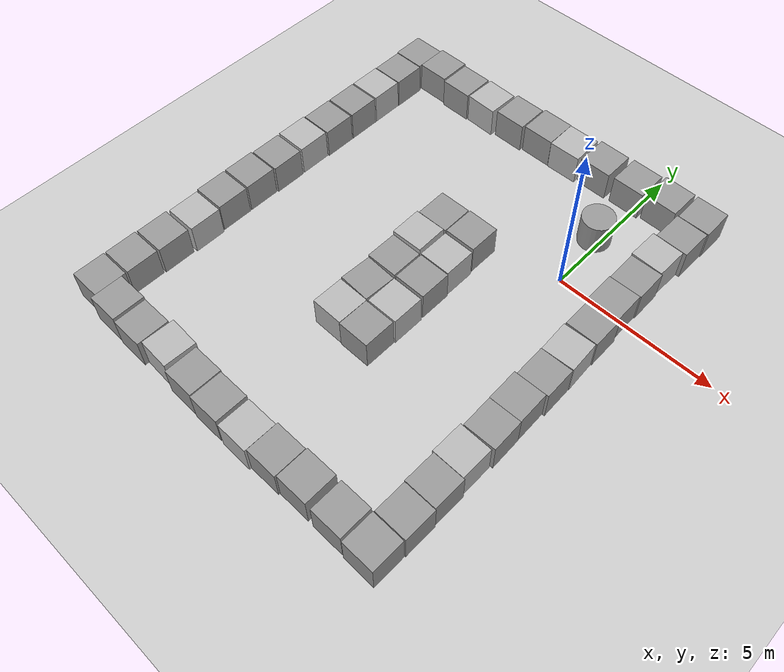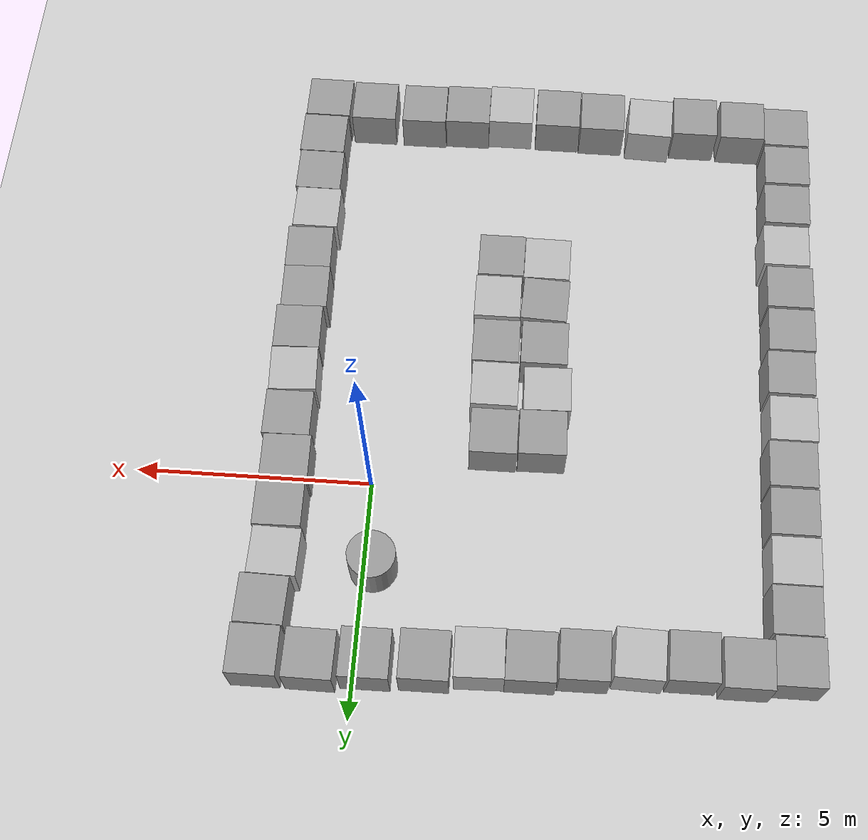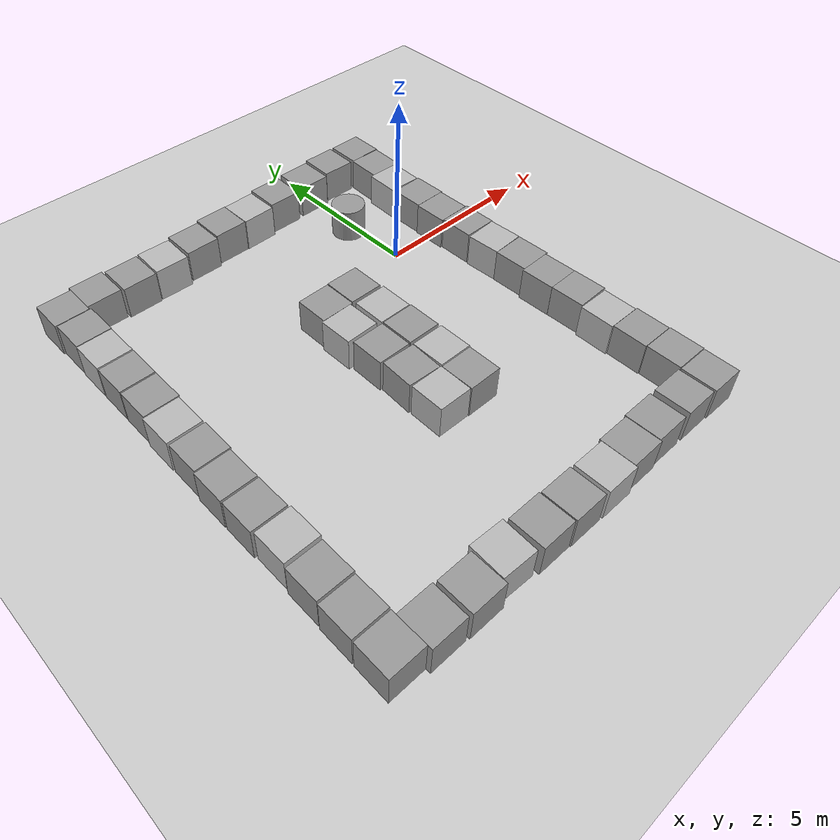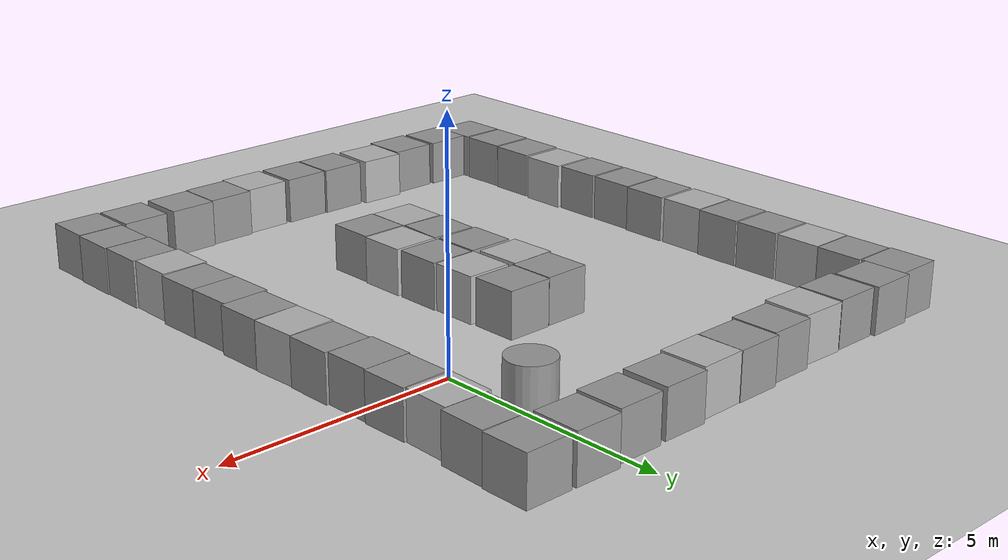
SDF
<sdf version="1.6">
 <world name="default">
  <light name="sun" type="directional">
   <pose>0 0 10 0 -0 0</pose>
   <diffuse>0.8 0.8 0.8 1</diffuse>
   <specular>0.2 0.2 0.2 1</specular>
   <attenuation>
    <range>1000</range>
    <constant>0.9</constant>
    <linear>0.01</linear>
    <quadratic>0.001</quadratic>
   </attenuation>
   <direction>-0.5 0.1 -0.9</direction>
  </light>
  <model name="ground_plane">
   <static>1</static>
   <link name="link">
    <collision name="collision">
     <geometry><plane><normal>0 0 1</normal><size>100 100</size></plane></geometry>
     <surface>
      <contact><collide_bitmask>65535</collide_bitmask></contact>
      <friction><ode><mu>100</mu><mu2>50</mu2></ode></friction>
     </surface>
    </collision>
    <visual name="visual">
     <cast_shadows>0</cast_shadows>
     <geometry><plane><normal>0 0 1</normal><size>100 100</size></plane></geometry>
     <material>
      <script><uri>file://media/materials/scripts/gazebo.material</uri><name>Gazebo/Grey</name></script>
     </material>
    </visual>
   </link>
  </model>
  <gravity>0 0 -9.8</gravity>
  <magnetic_field>6e-06 2.3e-05 -4.2e-05</magnetic_field>
  <atmosphere type="adiabatic"/>
  <physics name="default_physics" default="0" type="ode">
   <max_step_size>0.001</max_step_size>
   <real_time_factor>1</real_time_factor>
   <real_time_update_rate>1000</real_time_update_rate>
  </physics>
  <scene><ambient>0.4 0.4 0.4 1</ambient><background>0.7 0.7 0.7 1</background><shadows>1</shadows></scene>
  <audio><device>default</device></audio>
  <spherical_coordinates>
   <surface_model>EARTH_WGS84</surface_model>
   <latitude_deg>0</latitude_deg>
   <longitude_deg>0</longitude_deg>
   <elevation>0</elevation>
   <heading_deg>0</heading_deg>
  </spherical_coordinates>
  <model name="unit_box">
   <pose>-8.73208 0.394658 0.499995 1e-05 -0 -0.00012</pose>
   <link name="link">
    <inertial>
     <mass>1</mass>
     <inertia>
      <ixx>0.166667</ixx>
      <ixy>0</ixy>
      <ixz>0</ixz>
      <iyy>0.166667</iyy>
      <iyz>0</iyz>
      <izz>0.166667</izz>
     </inertia>
    </inertial>
    <collision name="collision"><geometry><box><size>1 1 1</size></box></geometry></collision>
    <visual name="visual">
     <geometry><box><size>1 1 1</size></box></geometry>
     <material>
      <script><name>Gazebo/Grey</name><uri>file://media/materials/scripts/gazebo.material</uri></script>
     </material>
    </visual>
   </link>
  </model>
  <model name="unit_box_1">
   <pose>-8.73525 -0.650646 0.499995 1e-05 -0 0</pose>
   <link name="link">
    <inertial>
     <mass>1</mass>
     <inertia>
      <ixx>0.166667</ixx>
      <ixy>0</ixy>
      <ixz>0</ixz>
      <iyy>0.166667</iyy>
      <iyz>0</iyz>
      <izz>0.166667</izz>
     </inertia>
    </inertial>
    <collision name="collision"><geometry><box><size>1 1 1</size></box></geometry></collision>
    <visual name="visual">
     <geometry><box><size>1 1 1</size></box></geometry>
     <material>
      <script><name>Gazebo/Grey</name><uri>file://media/materials/scripts/gazebo.material</uri></script>
     </material>
    </visual>
   </link>
  </model>
  <model name="unit_box_4">
   <pose>-2.45366 -3.10243 0.499995 0 1e-05 0</pose>
   <link name="link">
    <inertial>
     <mass>1</mass>
     <inertia>
      <ixx>0.166667</ixx>
      <ixy>0</ixy>
      <ixz>0</ixz>
      <iyy>0.166667</iyy>
      <iyz>0</iyz>
      <izz>0.166667</izz>
     </inertia>
    </inertial>
    <collision name="collision"><geometry><box><size>1 1 1</size></box></geometry></collision>
    <visual name="visual">
     <geometry><box><size>1 1 1</size></box></geometry>
     <material>
      <script><name>Gazebo/Grey</name><uri>file://media/materials/scripts/gazebo.material</uri></script>
     </material>
    </visual>
   </link>
  </model>
  <model name="unit_box_6">
   <pose>-3.46532 -4.16994 0.499995 0 1e-05 -0.049109</pose>
   <link name="link">
    <inertial>
     <mass>1</mass>
     <inertia>
      <ixx>0.166667</ixx>
      <ixy>0</ixy>
      <ixz>0</ixz>
      <iyy>0.166667</iyy>
      <iyz>0</iyz>
      <izz>0.166667</izz>
     </inertia>
    </inertial>
    <collision name="collision"><geometry><box><size>1 1 1</size></box></geometry></collision>
    <visual name="visual">
     <geometry><box><size>1 1 1</size></box></geometry>
     <material>
      <script><name>Gazebo/Grey</name><uri>file://media/materials/scripts/gazebo.material</uri></script>
     </material>
    </visual>
   </link>
  </model>
  <model name="unit_box_8">
   <pose>-2.46161 -5.22319 0.5 0 -0 0</pose>
   <link name="link">
    <inertial>
     <mass>1</mass>
     <inertia>
      <ixx>0.166667</ixx>
      <ixy>0</ixy>
      <ixz>0</ixz>
      <iyy>0.166667</iyy>
      <iyz>0</iyz>
      <izz>0.166667</izz>
     </inertia>
    </inertial>
    <collision name="collision"><geometry><box><size>1 1 1</size></box></geometry></collision>
    <visual name="visual">
     <geometry><box><size>1 1 1</size></box></geometry>
     <material>
      <script><name>Gazebo/Grey</name><uri>file://media/materials/scripts/gazebo.material</uri></script>
     </material>
    </visual>
   </link>
  </model>
  <model name="unit_box_10">
   <pose>-3.49852 -3.11328 0.499995 1e-05 -0 0</pose>
   <link name="link">
    <inertial>
     <mass>1</mass>
     <inertia>
      <ixx>0.166667</ixx>
      <ixy>0</ixy>
      <ixz>0</ixz>
      <iyy>0.166667</iyy>
      <iyz>0</iyz>
      <izz>0.166667</izz>
     </inertia>
    </inertial>
    <collision name="collision"><geometry><box><size>1 1 1</size></box></geometry></collision>
    <visual name="visual">
     <geometry><box><size>1 1 1</size></box></geometry>
     <material>
      <script><name>Gazebo/Grey</name><uri>file://media/materials/scripts/gazebo.material</uri></script>
     </material>
    </visual>
   </link>
  </model>
  <model name="unit_box_13">
   <pose>-8.75933 -2.74938 0.499995 1e-05 -0 0</pose>
   <link name="link">
    <inertial>
     <mass>1</mass>
     <inertia>
      <ixx>0.166667</ixx>
      <ixy>0</ixy>
      <ixz>0</ixz>
      <iyy>0.166667</iyy>
      <iyz>0</iyz>
      <izz>0.166667</izz>
     </inertia>
    </inertial>
    <collision name="collision"><geometry><box><size>1 1 1</size></box></geometry></collision>
    <visual name="visual">
     <geometry><box><size>1 1 1</size></box></geometry>
     <material>
      <script><name>Gazebo/Grey</name><uri>file://media/materials/scripts/gazebo.material</uri></script>
     </material>
    </visual>
   </link>
  </model>
  <model name="unit_box_14">
   <pose>-8.79846 -3.78614 0.499995 0 1e-05 0</pose>
   <link name="link">
    <inertial>
     <mass>1</mass>
     <inertia>
      <ixx>0.166667</ixx>
      <ixy>0</ixy>
      <ixz>0</ixz>
      <iyy>0.166667</iyy>
      <iyz>0</iyz>
      <izz>0.166667</izz>
     </inertia>
    </inertial>
    <collision name="collision"><geometry><box><size>1 1 1</size></box></geometry></collision>
    <visual name="visual">
     <geometry><box><size>1 1 1</size></box></geometry>
     <material>
      <script><name>Gazebo/Grey</name><uri>file://media/materials/scripts/gazebo.material</uri></script>
     </material>
    </visual>
   </link>
  </model>
  <model name="unit_box_15">
   <pose>-8.79378 -4.83925 0.499995 1e-05 -0 0</pose>
   <link name="link">
    <inertial>
     <mass>1</mass>
     <inertia>
      <ixx>0.166667</ixx>
      <ixy>0</ixy>
      <ixz>0</ixz>
      <iyy>0.166667</iyy>
      <iyz>0</iyz>
      <izz>0.166667</izz>
     </inertia>
    </inertial>
    <collision name="collision"><geometry><box><size>1 1 1</size></box></geometry></collision>
    <visual name="visual">
     <geometry><box><size>1 1 1</size></box></geometry>
     <material>
      <script><name>Gazebo/Grey</name><uri>file://media/materials/scripts/gazebo.material</uri></script>
     </material>
    </visual>
   </link>
  </model>
  <model name="unit_box_17">
   <pose>-8.79105 -6.9817 0.499995 1e-05 -0 0</pose>
   <link name="link">
    <inertial>
     <mass>1</mass>
     <inertia>
      <ixx>0.166667</ixx>
      <ixy>0</ixy>
      <ixz>0</ixz>
      <iyy>0.166667</iyy>
      <iyz>0</iyz>
      <izz>0.166667</izz>
     </inertia>
    </inertial>
    <collision name="collision"><geometry><box><size>1 1 1</size></box></geometry></collision>
    <visual name="visual">
     <geometry><box><size>1 1 1</size></box></geometry>
     <material>
      <script><name>Gazebo/Grey</name><uri>file://media/materials/scripts/gazebo.material</uri></script>
     </material>
    </visual>
   </link>
  </model>
  <model name="unit_box_18">
   <pose>-8.81822 -8.03717 0.499995 0 1e-05 0</pose>
   <link name="link">
    <inertial>
     <mass>1</mass>
     <inertia>
      <ixx>0.166667</ixx>
      <ixy>0</ixy>
      <ixz>0</ixz>
      <iyy>0.166667</iyy>
      <iyz>0</iyz>
      <izz>0.166667</izz>
     </inertia>
    </inertial>
    <collision name="collision"><geometry><box><size>1 1 1</size></box></geometry></collision>
    <visual name="visual">
     <geometry><box><size>1 1 1</size></box></geometry>
     <material>
      <script><name>Gazebo/Grey</name><uri>file://media/materials/scripts/gazebo.material</uri></script>
     </material>
    </visual>
   </link>
  </model>
  <model name="unit_box_19">
   <pose>-8.82789 -9.08499 0.499995 1e-05 -0 -0.003825</pose>
   <link name="link">
    <inertial>
     <mass>1</mass>
     <inertia>
      <ixx>0.166667</ixx>
      <ixy>0</ixy>
      <ixz>0</ixz>
      <iyy>0.166667</iyy>
      <iyz>0</iyz>
      <izz>0.166667</izz>
     </inertia>
    </inertial>
    <collision name="collision"><geometry><box><size>1 1 1</size></box></geometry></collision>
    <visual name="visual">
     <geometry><box><size>1 1 1</size></box></geometry>
     <material>
      <script><name>Gazebo/Grey</name><uri>file://media/materials/scripts/gazebo.material</uri></script>
     </material>
    </visual>
   </link>
  </model>
  <model name="unit_box_20">
   <pose>-7.82836 -9.21753 0.499995 1e-05 -0 -0.003821</pose>
   <link name="link">
    <inertial>
     <mass>1</mass>
     <inertia>
      <ixx>0.166667</ixx>
      <ixy>0</ixy>
      <ixz>0</ixz>
      <iyy>0.166667</iyy>
      <iyz>0</iyz>
      <izz>0.166667</izz>
     </inertia>
    </inertial>
    <collision name="collision"><geometry><box><size>1 1 1</size></box></geometry></collision>
    <visual name="visual">
     <geometry><box><size>1 1 1</size></box></geometry>
     <material>
      <script><name>Gazebo/Grey</name><uri>file://media/materials/scripts/gazebo.material</uri></script>
     </material>
    </visual>
   </link>
  </model>
  <model name="unit_box_21">
   <pose>-6.73771 -9.24958 0.499995 -0 1e-05 -0.002543</pose>
   <link name="link">
    <inertial>
     <mass>1</mass>
     <inertia>
      <ixx>0.166667</ixx>
      <ixy>0</ixy>
      <ixz>0</ixz>
      <iyy>0.166667</iyy>
      <iyz>0</iyz>
      <izz>0.166667</izz>
     </inertia>
    </inertial>
    <collision name="collision"><geometry><box><size>1 1 1</size></box></geometry></collision>
    <visual name="visual">
     <geometry><box><size>1 1 1</size></box></geometry>
     <material>
      <script><name>Gazebo/Grey</name><uri>file://media/materials/scripts/gazebo.material</uri></script>
     </material>
    </visual>
   </link>
  </model>
  <model name="unit_box_23">
   <pose>-4.59276 -9.25097 0.499995 -1e-05 -0 -0.00204</pose>
   <link name="link">
    <inertial>
     <mass>1</mass>
     <inertia>
      <ixx>0.166667</ixx>
      <ixy>0</ixy>
      <ixz>0</ixz>
      <iyy>0.166667</iyy>
      <iyz>0</iyz>
      <izz>0.166667</izz>
     </inertia>
    </inertial>
    <collision name="collision"><geometry><box><size>1 1 1</size></box></geometry></collision>
    <visual name="visual">
     <geometry><box><size>1 1 1</size></box></geometry>
     <material>
      <script><name>Gazebo/Grey</name><uri>file://media/materials/scripts/gazebo.material</uri></script>
     </material>
    </visual>
   </link>
  </model>
  <model name="unit_box_24">
   <pose>-3.56354 -9.2781 0.499995 -0 1e-05 -0.002492</pose>
   <link name="link">
    <inertial>
     <mass>1</mass>
     <inertia>
      <ixx>0.166667</ixx>
      <ixy>0</ixy>
      <ixz>0</ixz>
      <iyy>0.166667</iyy>
      <iyz>0</iyz>
      <izz>0.166667</izz>
     </inertia>
    </inertial>
    <collision name="collision"><geometry><box><size>1 1 1</size></box></geometry></collision>
    <visual name="visual">
     <geometry><box><size>1 1 1</size></box></geometry>
     <material>
      <script><name>Gazebo/Grey</name><uri>file://media/materials/scripts/gazebo.material</uri></script>
     </material>
    </visual>
   </link>
  </model>
  <model name="unit_box_26">
   <pose>-1.46416 -9.24413 0.499995 1e-05 -0 -0.000116</pose>
   <link name="link">
    <inertial>
     <mass>1</mass>
     <inertia>
      <ixx>0.166667</ixx>
      <ixy>0</ixy>
      <ixz>0</ixz>
      <iyy>0.166667</iyy>
      <iyz>0</iyz>
      <izz>0.166667</izz>
     </inertia>
    </inertial>
    <collision name="collision"><geometry><box><size>1 1 1</size></box></geometry></collision>
    <visual name="visual">
     <geometry><box><size>1 1 1</size></box></geometry>
     <material>
      <script><name>Gazebo/Grey</name><uri>file://media/materials/scripts/gazebo.material</uri></script>
     </material>
    </visual>
   </link>
  </model>
  <model name="unit_box_27">
   <pose>-0.450502 -9.20253 0.499995 1e-05 -0 -0.000115</pose>
   <link name="link">
    <inertial>
     <mass>1</mass>
     <inertia>
      <ixx>0.166667</ixx>
      <ixy>0</ixy>
      <ixz>0</ixz>
      <iyy>0.166667</iyy>
      <iyz>0</iyz>
      <izz>0.166667</izz>
     </inertia>
    </inertial>
    <collision name="collision"><geometry><box><size>1 1 1</size></box></geometry></collision>
    <visual name="visual">
     <geometry><box><size>1 1 1</size></box></geometry>
     <material>
      <script><name>Gazebo/Grey</name><uri>file://media/materials/scripts/gazebo.material</uri></script>
     </material>
    </visual>
   </link>
  </model>
  <model name="unit_box_28">
   <pose>0.72319 -9.21205 0.499995 1e-05 -0 0</pose>
   <link name="link">
    <inertial>
     <mass>1</mass>
     <inertia>
      <ixx>0.166667</ixx>
      <ixy>0</ixy>
      <ixz>0</ixz>
      <iyy>0.166667</iyy>
      <iyz>0</iyz>
      <izz>0.166667</izz>
     </inertia>
    </inertial>
    <collision name="collision"><geometry><box><size>1 1 1</size></box></geometry></collision>
    <visual name="visual">
     <geometry><box><size>1 1 1</size></box></geometry>
     <material>
      <script><name>Gazebo/Grey</name><uri>file://media/materials/scripts/gazebo.material</uri></script>
     </material>
    </visual>
   </link>
  </model>
  <model name="unit_box_29">
   <pose>1.81683 -8.22556 0.499995 1e-05 0 -0.008464</pose>
   <link name="link">
    <inertial>
     <mass>1</mass>
     <inertia>
      <ixx>0.166667</ixx>
      <ixy>0</ixy>
      <ixz>0</ixz>
      <iyy>0.166667</iyy>
      <iyz>0</iyz>
      <izz>0.166667</izz>
     </inertia>
    </inertial>
    <collision name="collision"><geometry><box><size>1 1 1</size></box></geometry></collision>
    <visual name="visual">
     <geometry><box><size>1 1 1</size></box></geometry>
     <material>
      <script><name>Gazebo/Grey</name><uri>file://media/materials/scripts/gazebo.material</uri></script>
     </material>
    </visual>
   </link>
  </model>
  <model name="unit_box_30">
   <pose>1.80069 -7.21425 0.499995 -0 -1e-05 -0.007795</pose>
   <link name="link">
    <inertial>
     <mass>1</mass>
     <inertia>
      <ixx>0.166667</ixx>
      <ixy>0</ixy>
      <ixz>0</ixz>
      <iyy>0.166667</iyy>
      <iyz>0</iyz>
      <izz>0.166667</izz>
     </inertia>
    </inertial>
    <collision name="collision"><geometry><box><size>1 1 1</size></box></geometry></collision>
    <visual name="visual">
     <geometry><box><size>1 1 1</size></box></geometry>
     <material>
      <script><name>Gazebo/Grey</name><uri>file://media/materials/scripts/gazebo.material</uri></script>
     </material>
    </visual>
   </link>
  </model>
  <model name="unit_box_32">
   <pose>1.818 -5.16965 0.499995 1e-05 -0 0.023377</pose>
   <link name="link">
    <inertial>
     <mass>1</mass>
     <inertia>
      <ixx>0.166667</ixx>
      <ixy>0</ixy>
      <ixz>0</ixz>
      <iyy>0.166667</iyy>
      <iyz>0</iyz>
      <izz>0.166667</izz>
     </inertia>
    </inertial>
    <collision name="collision"><geometry><box><size>1 1 1</size></box></geometry></collision>
    <visual name="visual">
     <geometry><box><size>1 1 1</size></box></geometry>
     <material>
      <script><name>Gazebo/Grey</name><uri>file://media/materials/scripts/gazebo.material</uri></script>
     </material>
    </visual>
   </link>
  </model>
  <model name="unit_box_33">
   <pose>1.7892 -4.17002 0.499995 1e-05 -0 0.02336</pose>
   <link name="link">
    <inertial>
     <mass>1</mass>
     <inertia>
      <ixx>0.166667</ixx>
      <ixy>0</ixy>
      <ixz>0</ixz>
      <iyy>0.166667</iyy>
      <iyz>0</iyz>
      <izz>0.166667</izz>
     </inertia>
    </inertial>
    <collision name="collision"><geometry><box><size>1 1 1</size></box></geometry></collision>
    <visual name="visual">
     <geometry><box><size>1 1 1</size></box></geometry>
     <material>
      <script><name>Gazebo/Grey</name><uri>file://media/materials/scripts/gazebo.material</uri></script>
     </material>
    </visual>
   </link>
  </model>
  <model name="unit_box_37">
   <pose>1.75968 0.885157 0.499995 1e-05 -0 0.012187</pose>
   <link name="link">
    <inertial>
     <mass>1</mass>
     <inertia>
      <ixx>0.166667</ixx>
      <ixy>0</ixy>
      <ixz>0</ixz>
      <iyy>0.166667</iyy>
      <iyz>0</iyz>
      <izz>0.166667</izz>
     </inertia>
    </inertial>
    <collision name="collision"><geometry><box><size>1 1 1</size></box></geometry></collision>
    <visual name="visual">
     <geometry><box><size>1 1 1</size></box></geometry>
     <material>
      <script><name>Gazebo/Grey</name><uri>file://media/materials/scripts/gazebo.material</uri></script>
     </material>
    </visual>
   </link>
  </model>
  <model name="unit_box_39">
   <pose>-1.45561 3.83114 0.499995 1e-05 -0 5.9e-05</pose>
   <link name="link">
    <inertial>
     <mass>1</mass>
     <inertia>
      <ixx>0.166667</ixx>
      <ixy>0</ixy>
      <ixz>0</ixz>
      <iyy>0.166667</iyy>
      <iyz>0</iyz>
      <izz>0.166667</izz>
     </inertia>
    </inertial>
    <collision name="collision"><geometry><box><size>1 1 1</size></box></geometry></collision>
    <visual name="visual">
     <geometry><box><size>1 1 1</size></box></geometry>
     <material>
      <script><name>Gazebo/Grey</name><uri>file://media/materials/scripts/gazebo.material</uri></script>
     </material>
    </visual>
   </link>
  </model>
  <model name="unit_box_40">
   <pose>-0.290688 3.86971 0.499995 1e-05 -0 0</pose>
   <link name="link">
    <inertial>
     <mass>1</mass>
     <inertia>
      <ixx>0.166667</ixx>
      <ixy>0</ixy>
      <ixz>0</ixz>
      <iyy>0.166667</iyy>
      <iyz>0</iyz>
      <izz>0.166667</izz>
     </inertia>
    </inertial>
    <collision name="collision"><geometry><box><size>1 1 1</size></box></geometry></collision>
    <visual name="visual">
     <geometry><box><size>1 1 1</size></box></geometry>
     <material>
      <script><name>Gazebo/Grey</name><uri>file://media/materials/scripts/gazebo.material</uri></script>
     </material>
    </visual>
   </link>
  </model>
  <model name="unit_box_42">
   <pose>0.792049 3.95614 0.499995 1e-05 -0 -0.012034</pose>
   <link name="link">
    <inertial>
     <mass>1</mass>
     <inertia>
      <ixx>0.166667</ixx>
      <ixy>0</ixy>
      <ixz>0</ixz>
      <iyy>0.166667</iyy>
      <iyz>0</iyz>
      <izz>0.166667</izz>
     </inertia>
    </inertial>
    <collision name="collision"><geometry><box><size>1 1 1</size></box></geometry></collision>
    <visual name="visual">
     <geometry><box><size>1 1 1</size></box></geometry>
     <material>
      <script><name>Gazebo/Grey</name><uri>file://media/materials/scripts/gazebo.material</uri></script>
     </material>
    </visual>
   </link>
  </model>
  <model name="unit_box_43">
   <pose>1.85421 2.92949 0.499995 -1e-05 -0 -0.023604</pose>
   <link name="link">
    <inertial>
     <mass>1</mass>
     <inertia>
      <ixx>0.166667</ixx>
      <ixy>0</ixy>
      <ixz>0</ixz>
      <iyy>0.166667</iyy>
      <iyz>0</iyz>
      <izz>0.166667</izz>
     </inertia>
    </inertial>
    <collision name="collision"><geometry><box><size>1 1 1</size></box></geometry></collision>
    <visual name="visual">
     <geometry><box><size>1 1 1</size></box></geometry>
     <material>
      <script><name>Gazebo/Grey</name><uri>file://media/materials/scripts/gazebo.material</uri></script>
     </material>
    </visual>
   </link>
  </model>
  <model name="unit_box_45">
   <pose>-3.53265 3.72336 0.499995 0 1e-05 0.00487</pose>
   <link name="link">
    <inertial>
     <mass>1</mass>
     <inertia>
      <ixx>0.166667</ixx>
      <ixy>0</ixy>
      <ixz>0</ixz>
      <iyy>0.166667</iyy>
      <iyz>0</iyz>
      <izz>0.166667</izz>
     </inertia>
    </inertial>
    <collision name="collision"><geometry><box><size>1 1 1</size></box></geometry></collision>
    <visual name="visual">
     <geometry><box><size>1 1 1</size></box></geometry>
     <material>
      <script><name>Gazebo/Grey</name><uri>file://media/materials/scripts/gazebo.material</uri></script>
     </material>
    </visual>
   </link>
  </model>
  <model name="unit_box_46">
   <pose>-4.57517 3.63075 0.499995 1e-05 -0 0.00262</pose>
   <link name="link">
    <inertial>
     <mass>1</mass>
     <inertia>
      <ixx>0.166667</ixx>
      <ixy>0</ixy>
      <ixz>0</ixz>
      <iyy>0.166667</iyy>
      <iyz>0</iyz>
      <izz>0.166667</izz>
     </inertia>
    </inertial>
    <collision name="collision"><geometry><box><size>1 1 1</size></box></geometry></collision>
    <visual name="visual">
     <geometry><box><size>1 1 1</size></box></geometry>
     <material>
      <script><name>Gazebo/Grey</name><uri>file://media/materials/scripts/gazebo.material</uri></script>
     </material>
    </visual>
   </link>
  </model>
  <model name="unit_box_48">
   <pose>-6.70132 3.5177 0.499995 0 1e-05 0</pose>
   <link name="link">
    <inertial>
     <mass>1</mass>
     <inertia>
      <ixx>0.166667</ixx>
      <ixy>0</ixy>
      <ixz>0</ixz>
      <iyy>0.166667</iyy>
      <iyz>0</iyz>
      <izz>0.166667</izz>
     </inertia>
    </inertial>
    <collision name="collision"><geometry><box><size>1 1 1</size></box></geometry></collision>
    <visual name="visual">
     <geometry><box><size>1 1 1</size></box></geometry>
     <material>
      <script><name>Gazebo/Grey</name><uri>file://media/materials/scripts/gazebo.material</uri></script>
     </material>
    </visual>
   </link>
  </model>
  <model name="unit_box_49">
   <pose>-7.75877 3.58603 0.499995 1e-05 -0 0.000446</pose>
   <link name="link">
    <inertial>
     <mass>1</mass>
     <inertia>
      <ixx>0.166667</ixx>
      <ixy>0</ixy>
      <ixz>0</ixz>
      <iyy>0.166667</iyy>
      <iyz>0</iyz>
      <izz>0.166667</izz>
     </inertia>
    </inertial>
    <collision name="collision"><geometry><box><size>1 1 1</size></box></geometry></collision>
    <visual name="visual">
     <geometry><box><size>1 1 1</size></box></geometry>
     <material>
      <script><name>Gazebo/Grey</name><uri>file://media/materials/scripts/gazebo.material</uri></script>
     </material>
    </visual>
   </link>
  </model>
  <model name="unit_box_50">
   <pose>-8.75873 3.48616 0.499995 1e-05 -0 0.000432</pose>
   <link name="link">
    <inertial>
     <mass>1</mass>
     <inertia>
      <ixx>0.166667</ixx>
      <ixy>0</ixy>
      <ixz>0</ixz>
      <iyy>0.166667</iyy>
      <iyz>0</iyz>
      <izz>0.166667</izz>
     </inertia>
    </inertial>
    <collision name="collision"><geometry><box><size>1 1 1</size></box></geometry></collision>
    <visual name="visual">
     <geometry><box><size>1 1 1</size></box></geometry>
     <material>
      <script><name>Gazebo/Grey</name><uri>file://media/materials/scripts/gazebo.material</uri></script>
     </material>
    </visual>
   </link>
  </model>
  <model name="unit_box_51">
   <pose>-8.71677 2.46298 0.499995 -1e-05 0 0.000652</pose>
   <link name="link">
    <inertial>
     <mass>1</mass>
     <inertia>
      <ixx>0.166667</ixx>
      <ixy>0</ixy>
      <ixz>0</ixz>
      <iyy>0.166667</iyy>
      <iyz>0</iyz>
      <izz>0.166667</izz>
     </inertia>
    </inertial>
    <collision name="collision"><geometry><box><size>1 1 1</size></box></geometry></collision>
    <visual name="visual">
     <geometry><box><size>1 1 1</size></box></geometry>
     <material>
      <script><name>Gazebo/Grey</name><uri>file://media/materials/scripts/gazebo.material</uri></script>
     </material>
    </visual>
   </link>
  </model>
  <light name="user_point_light_0" type="point">
   <pose>-6.14571 -6.63651 1 0 -0 0</pose>
   <diffuse>0.5 0.5 0.5 1</diffuse>
   <specular>0.1 0.1 0.1 1</specular>
   <attenuation>
    <range>20</range>
    <constant>0.5</constant>
    <linear>0.01</linear>
    <quadratic>0.001</quadratic>
   </attenuation>
   <cast_shadows>0</cast_shadows>
   <direction>0 0 -1</direction>
  </light>
  <light name="user_point_light_1" type="point">
   <pose>-6.11805 1.067 1 0 -0 0</pose>
   <diffuse>0.5 0.5 0.5 1</diffuse>
   <specular>0.1 0.1 0.1 1</specular>
   <attenuation>
    <range>20</range>
    <constant>0.5</constant>
    <linear>0.01</linear>
    <quadratic>0.001</quadratic>
   </attenuation>
   <cast_shadows>0</cast_shadows>
   <direction>0 0 -1</direction>
  </light>
  <light name="user_point_light_2" type="point">
   <pose>-0.573578 1.35587 1 0 -0 0</pose>
   <diffuse>0.5 0.5 0.5 1</diffuse>
   <specular>0.1 0.1 0.1 1</specular>
   <attenuation>
    <range>20</range>
    <constant>0.5</constant>
    <linear>0.01</linear>
    <quadratic>0.001</quadratic>
   </attenuation>
   <cast_shadows>0</cast_shadows>
   <direction>0 0 -1</direction>
  </light>
  <light name="user_point_light_3" type="point">
   <pose>-1.02944 -6.8098 1 0 -0 0</pose>
   <diffuse>0.5 0.5 0.5 1</diffuse>
   <specular>0.1 0.1 0.1 1</specular>
   <attenuation>
    <range>20</range>
    <constant>0.5</constant>
    <linear>0.01</linear>
    <quadratic>0.001</quadratic>
   </attenuation>
   <cast_shadows>0</cast_shadows>
   <direction>0 0 -1</direction>
  </light>
  <model name="unit_cylinder">
   <pose>-0.225331 1.86282 0.499994 -3e-06 -1e-06 -0</pose>
   <link name="link">
    <inertial>
     <mass>1</mass>
     <inertia><ixx>0.145833</ixx><ixy>0</ixy><ixz>0</ixz><iyy>0.145833</iyy><iyz>0</iyz><izz>0.125</izz></inertia>
    </inertial>
    <collision name="collision">
     <geometry><cylinder><radius>0.5</radius><length>1</length></cylinder></geometry>
    </collision>
    <visual name="visual">
     <geometry><cylinder><radius>0.5</radius><length>1</length></cylinder></geometry>
     <material>
      <script><name>Gazebo/Grey</name><uri>file://media/materials/scripts/gazebo.material</uri></script>
     </material>
    </visual>
   </link>
  </model>
  <model name="unit_box_11">
   <pose>-3.55144 -1.01545 0.499995 0 1e-05 0.011327</pose>
   <link name="link">
    <inertial>
     <mass>1</mass>
     <inertia>
      <ixx>0.166667</ixx>
      <ixy>0</ixy>
      <ixz>0</ixz>
      <iyy>0.166667</iyy>
      <iyz>0</iyz>
      <izz>0.166667</izz>
     </inertia>
    </inertial>
    <collision name="collision"><geometry><box><size>1 1 1</size></box></geometry></collision>
    <visual name="visual">
     <geometry><box><size>1 1 1</size></box></geometry>
     <material>
      <script><name>Gazebo/Grey</name><uri>file://media/materials/scripts/gazebo.material</uri></script>
     </material>
    </visual>
   </link>
  </model>
  <model name="unit_box_12">
   <pose>-2.52881 -0.984635 0.499995 0 1e-05 0</pose>
   <link name="link">
    <inertial>
     <mass>1</mass>
     <inertia>
      <ixx>0.166667</ixx>
      <ixy>0</ixy>
      <ixz>0</ixz>
      <iyy>0.166667</iyy>
      <iyz>0</iyz>
      <izz>0.166667</izz>
     </inertia>
    </inertial>
    <collision name="collision"><geometry><box><size>1 1 1</size></box></geometry></collision>
    <visual name="visual">
     <geometry><box><size>1 1 1</size></box></geometry>
     <material>
      <script><name>Gazebo/Grey</name><uri>file://media/materials/scripts/gazebo.material</uri></script>
     </material>
    </visual>
   </link>
  </model>
  <model name="unit_box_34">
   <pose>1.83973 -3.16853 0.499995 0 -1e-05 0.023394</pose>
   <link name="link">
    <inertial>
     <mass>1</mass>
     <inertia>
      <ixx>0.166667</ixx>
      <ixy>0</ixy>
      <ixz>0</ixz>
      <iyy>0.166667</iyy>
      <iyz>0</iyz>
      <izz>0.166667</izz>
     </inertia>
    </inertial>
    <collision name="collision"><geometry><box><size>1 1 1</size></box></geometry></collision>
    <visual name="visual">
     <geometry><box><size>1 1 1</size></box></geometry>
     <material>
      <script><name>Gazebo/Grey</name><uri>file://media/materials/scripts/gazebo.material</uri></script>
     </material>
    </visual>
   </link>
  </model>
  <model name="unit_box_36">
   <pose>1.80822 -1.12179 0.499995 0 1e-05 0.007681</pose>
   <link name="link">
    <inertial>
     <mass>1</mass>
     <inertia>
      <ixx>0.166667</ixx>
      <ixy>0</ixy>
      <ixz>0</ixz>
      <iyy>0.166667</iyy>
      <iyz>0</iyz>
      <izz>0.166667</izz>
     </inertia>
    </inertial>
    <collision name="collision"><geometry><box><size>1 1 1</size></box></geometry></collision>
    <visual name="visual">
     <geometry><box><size>1 1 1</size></box></geometry>
     <material>
      <script><name>Gazebo/Grey</name><uri>file://media/materials/scripts/gazebo.material</uri></script>
     </material>
    </visual>
   </link>
  </model>
  <model name="unit_box_52">
   <pose>1.74259 -0.118034 0.499995 1e-05 -0 0.017177</pose>
   <link name="link">
    <inertial>
     <mass>1</mass>
     <inertia>
      <ixx>0.166667</ixx>
      <ixy>0</ixy>
      <ixz>0</ixz>
      <iyy>0.166667</iyy>
      <iyz>0</iyz>
      <izz>0.166667</izz>
     </inertia>
    </inertial>
    <collision name="collision"><geometry><box><size>1 1 1</size></box></geometry></collision>
    <visual name="visual">
     <geometry><box><size>1 1 1</size></box></geometry>
     <material>
      <script><name>Gazebo/Grey</name><uri>file://media/materials/scripts/gazebo.material</uri></script>
     </material>
    </visual>
   </link>
  </model>
  <model name="unit_box_41">
   <pose>1.78676 -9.24704 0.499995 -0 1e-05 -0.008505</pose>
   <link name="link">
    <inertial>
     <mass>1</mass>
     <inertia>
      <ixx>0.166667</ixx>
      <ixy>0</ixy>
      <ixz>0</ixz>
      <iyy>0.166667</iyy>
      <iyz>0</iyz>
      <izz>0.166667</izz>
     </inertia>
    </inertial>
    <collision name="collision"><geometry><box><size>1 1 1</size></box></geometry></collision>
    <visual name="visual">
     <geometry><box><size>1 1 1</size></box></geometry>
     <material>
      <script><name>Gazebo/Grey</name><uri>file://media/materials/scripts/gazebo.material</uri></script>
     </material>
    </visual>
   </link>
  </model>
  <model name="unit_box_53">
   <pose>1.89369 3.9453 0.499995 1e-05 -0 0</pose>
   <link name="link">
    <inertial>
     <mass>1</mass>
     <inertia>
      <ixx>0.166667</ixx>
      <ixy>0</ixy>
      <ixz>0</ixz>
      <iyy>0.166667</iyy>
      <iyz>0</iyz>
      <izz>0.166667</izz>
     </inertia>
    </inertial>
    <collision name="collision"><geometry><box><size>1 1 1</size></box></geometry></collision>
    <visual name="visual">
     <geometry><box><size>1 1 1</size></box></geometry>
     <material>
      <script><name>Gazebo/Grey</name><uri>file://media/materials/scripts/gazebo.material</uri></script>
     </material>
    </visual>
   </link>
  </model>
  <model name="apriltag4">
   <pose>-5.65321 3.53627 0.5 0 0 -1.59951</pose>
   <static>1</static>
   <link name="link">
    <collision name="collision"><geometry><box><size>1 1 1</size></box></geometry></collision>
    <visual name="visual">
     <geometry><mesh><uri>model://apriltag_4/meshes/aptag_4.dae</uri></mesh></geometry>
    </visual>
   </link>
  </model>
  <model name="apriltag1">
   <pose>-8.74439 -5.8941 0.5 0 -0 0</pose>
   <static>1</static>
   <link name="link">
    <collision name="collision"><geometry><box><size>1 1 1</size></box></geometry></collision>
    <visual name="visual">
     <geometry><mesh><uri>model://apriltag_1/meshes/aptag_1.dae</uri></mesh></geometry>
    </visual>
   </link>
  </model>
  <model name="apriltag2">
   <pose>-8.77337 -1.68115 0.5 0 -0 0</pose>
   <static>1</static>
   <link name="link">
    <collision name="collision"><geometry><box><size>1 1 1</size></box></geometry></collision>
    <visual name="visual">
     <geometry><mesh><uri>model://apriltag_2/meshes/aptag_2.dae</uri></mesh></geometry>
    </visual>
   </link>
  </model>
  <model name="apriltag3">
   <pose>-8.73126 1.44051 0.5 0 -0 0</pose>
   <static>1</static>
   <link name="link">
    <collision name="collision"><geometry><box><size>1 1 1</size></box></geometry></collision>
    <visual name="visual">
     <geometry><mesh><uri>model://apriltag_3/meshes/aptag_3.dae</uri></mesh></geometry>
    </visual>
   </link>
  </model>
  <model name="apriltag5">
   <pose>-2.52459 3.72243 0.5 0 0 -1.54972</pose>
   <static>1</static>
   <link name="link">
    <collision name="collision"><geometry><box><size>1 1 1</size></box></geometry></collision>
    <visual name="visual">
     <geometry><mesh><uri>model://apriltag_5/meshes/aptag_5.dae</uri></mesh></geometry>
    </visual>
   </link>
  </model>
  <model name="apriltag6">
   <pose>1.81312 -2.15597 0.5 0 0 -3.09205</pose>
   <static>1</static>
   <link name="link">
    <collision name="collision"><geometry><box><size>1 1 1</size></box></geometry></collision>
    <visual name="visual">
     <geometry><mesh><uri>model://apriltag_6/meshes/aptag_6.dae</uri></mesh></geometry>
    </visual>
   </link>
  </model>
  <model name="apriltag7">
   <pose>1.75869 -6.20846 0.5 0 -0 3.13477</pose>
   <static>1</static>
   <link name="link">
    <collision name="collision"><geometry><box><size>1 1 1</size></box></geometry></collision>
    <visual name="visual">
     <geometry><mesh><uri>model://apriltag_7/meshes/aptag_7.dae</uri></mesh></geometry>
    </visual>
   </link>
  </model>
  <model name="apriltag8">
   <pose>-2.46765 -9.30024 0.5 0 -0 1.56763</pose>
   <static>1</static>
   <link name="link">
    <collision name="collision"><geometry><box><size>1 1 1</size></box></geometry></collision>
    <visual name="visual">
     <geometry><mesh><uri>model://apriltag_8/meshes/aptag_8.dae</uri></mesh></geometry>
    </visual>
   </link>
  </model>
  <model name="apriltag12">
   <pose>-3.60288 -2.02095 0.5 0 0 -3.12059</pose>
   <static>1</static>
   <link name="link">
    <collision name="collision"><geometry><box><size>1 1 1</size></box></geometry></collision>
    <visual name="visual">
     <geometry><mesh><uri>model://apriltag_12/meshes/aptag_12.dae</uri></mesh></geometry>
    </visual>
   </link>
  </model>
  <model name="apriltag9">
   <pose>-5.70343 -9.15199 0.5 0 -0 1.52896</pose>
   <static>1</static>
   <link name="link">
    <collision name="collision"><geometry><box><size>1 1 1</size></box></geometry></collision>
    <visual name="visual">
     <geometry><mesh><uri>model://apriltag_9/meshes/aptag_9.dae</uri></mesh></geometry>
    </visual>
   </link>
  </model>
  <model name="apriltag11">
   <pose>-3.46915 -5.19704 0.5 0 -0 3.13215</pose>
   <static>1</static>
   <link name="link">
    <collision name="collision"><geometry><box><size>1 1 1</size></box></geometry></collision>
    <visual name="visual">
     <geometry><mesh><uri>model://apriltag_11/meshes/aptag_11.dae</uri></mesh></geometry>
    </visual>
   </link>
  </model>
  <model name="apriltag13">
   <pose>-2.48548 -2.07486 0.5 0 -0 0</pose>
   <static>1</static>
   <link name="link">
    <collision name="collision"><geometry><box><size>1 1 1</size></box></geometry></collision>
    <visual name="visual">
     <geometry><mesh><uri>model://apriltag_13/meshes/aptag_13.dae</uri></mesh></geometry>
    </visual>
   </link>
  </model>
  <model name="apriltag14">
   <pose>-2.43215 -4.18616 0.5 0 -0 0</pose>
   <static>1</static>
   <link name="link">
    <collision name="collision"><geometry><box><size>1 1 1</size></box></geometry></collision>
    <visual name="visual">
     <geometry><mesh><uri>model://apriltag_14/meshes/aptag_14.dae</uri></mesh></geometry>
    </visual>
   </link>
  </model>
  <model name="apriltag15">
   <pose>1.72551 1.92208 0.5 0 -0 3.11799</pose>
   <static>1</static>
   <link name="link">
    <collision name="collision"><geometry><box><size>1 1 1</size></box></geometry></collision>
    <visual name="visual">
     <geometry><mesh><uri>model://apriltag_15/meshes/aptag_15.dae</uri></mesh></geometry>
    </visual>
   </link>
  </model>
 </world>
</sdf>
